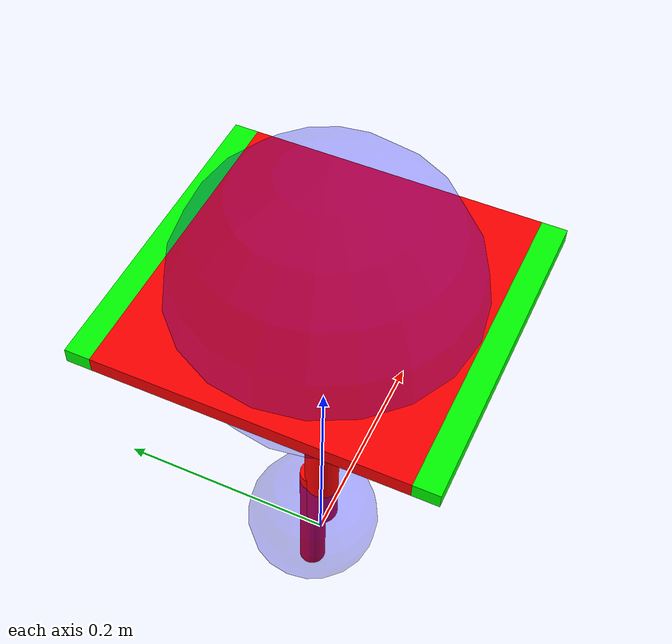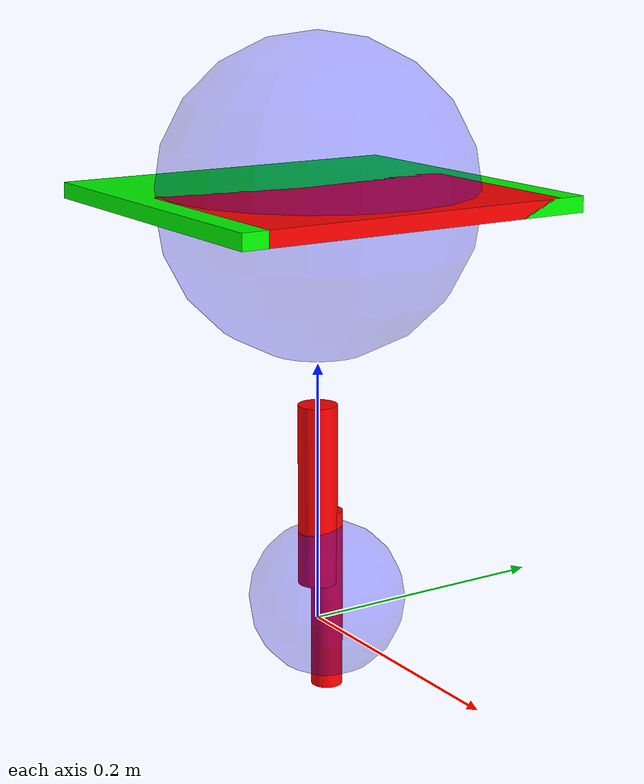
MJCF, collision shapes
<mujoco model="swivel_chair_0700">
  <custom>
    <numeric data="-0.225755 0.221819 0.007144 1.0 0.00064 -0.0 -0.0" name="1_chair_base_initpos" />
    <numeric data="0.090067 0.21979 0.01494 0.118367 -0.701227 0.090995 -0.697129" name="2_chair_column_initpos" />
    <numeric data="0.082576 -0.170539 0.009289 0.421821 0.906551 0.013823 0.006432" name="3_chair_seat_initpos" />
  </custom>
  <asset>
    <mesh file="swivel_chair_0700/base.stl" name="1_chair_base" scale="0.0006 0.0006 0.0006" />
    <mesh file="swivel_chair_0700/column.stl" name="2_chair_column" scale="0.0006 0.0006 0.0006" />
    <mesh file="swivel_chair_0700/seat.stl" name="3_chair_seat" scale="0.0006 0.0006 0.0006" />
    <texture file="../textures/light-wood.png" name="tex-light-wood" type="2d" />
    <material name="light-wood" reflectance="0.5" texrepeat="20 20" texture="tex-light-wood" texuniform="true" />
  </asset>
  <worldbody><body name="combined_body" pos="0 0 0.015" quat="1 0 0 0"><geom conaffinity="0" contype="0" density="0" material="light-wood" mesh="1_chair_base" name="1_chair_base_geom" pos="0.0 0.008 0.0" rgba="0.82 0.71 0.55 1" solref="0.001 1" type="mesh" quat="1 0 0 0" />
      <geom density="100" name="noviz_collision_1_chair_base_1" pos="0.0 0.008 0.0" rgba="1 0 0 1" size="0.012 0.07" solref="0.001 1" type="cylinder" quat="1 0 0 0" />
      <geom density="100" name="noviz_collision_1_chair_base_2" pos="0.0 0.008 0.0" rgba="1 0 0 1" size="0.012 0.07" solref="0.001 1" type="cylinder" quat="1 0 0 0" />
      <geom density="100" name="noviz_collision_1_chair_base_3" pos="0.0 0.008 0.0" rgba="1 0 0 1" size="0.012 0.07" solref="0.001 1" type="cylinder" quat="1 0 0 0" />
      <geom density="100" name="noviz_collision_1_chair_base_4" pos="0.0 0.008 0.0" rgba="1 0 0 1" size="0.012 0.07" solref="0.001 1" type="cylinder" quat="1 0 0 0" />
      <geom density="100" name="noviz_collision_1_chair_base_5" pos="0.0 0.008 0.0" rgba="1 0 0 1" size="0.012 0.07" solref="0.001 1" type="cylinder" quat="1 0 0 0" />
      <site name="base-column,conn_site1" pos="0.0 0.008 0.0" quat="1 0 0 0" rgba="0.9019 0.0980 0.2941 0.3" size="0.012" />
      <site name="1_chair_base_corner_site1" pos="0.0 0.008 0.0" rgba="0 0 1 0.3" size="0.012" quat="1 0 0 0" />
      <site name="1_chair_base_corner_site2" pos="0.0 0.008 0.0" rgba="0 0 1 0.3" size="0.012" quat="1 0 0 0" />
      <site name="1_chair_base_corner_site3" pos="0.0 0.008 0.0" rgba="0 0 1 0.3" size="0.012" quat="1 0 0 0" />
      <site name="1_chair_base_corner_site4" pos="0.0 0.008 0.0" rgba="0 0 1 0.3" size="0.012" quat="1 0 0 0" />
      <site name="1_chair_base_corner_site5" pos="0.0 0.008 0.0" rgba="0 0 1 0.3" size="0.012" quat="1 0 0 0" />
      <site name="1_chair_base_bottom_site" pos="0.0 0.008 0.0" rgba="0 0 1 0.3" size="0.00684" quat="1 0 0 0" />
      <site name="1_chair_base_top_site" pos="0.0 0.008 0.0" rgba="0 0 1 0.3" size="0.00684" quat="1 0 0 0" />
      <site name="1_chair_base_horizontal_radius_site" pos="0.0 0.008 0.0" rgba="0 0 1 0.3" size="0.06" quat="1 0 0 0" />
    <geom conaffinity="0" contype="0" density="0" material="light-wood" mesh="2_chair_column" name="2_chair_column_geom" pos="0.0 0.0 0.084" rgba="0.82 0.71 0.55 1" solref="0.001 1" type="mesh" quat="1 0 0 0" />
      <geom density="100" name="noviz_collision_2_chair_column" pos="0.0 0.0 0.084" rgba="1 0 0 1" size="0.015 0.07" solref="0.001 1" type="cylinder" quat="1 0 0 0" />
      <site name="column-base,conn_site1" pos="0.0 0.0 0.084" quat="1 0 0 0" rgba="0.9019 0.0980 0.2941 0.3" size="0.012" />
      <site name="column-seat,conn_site2" pos="0.0 0.0 0.084" quat="1 0 0 0" rgba="0.2352 0.7058 0.2941 0.3" size="0.012" />
      <site name="2_chair_column_corner_site1" pos="0.0 0.0 0.084" rgba="0 0 1 0.3" size="0.00684" quat="1 0 0 0" />
      <site name="2_chair_column_corner_site2" pos="0.0 0.0 0.084" rgba="0 0 1 0.3" size="0.00684" quat="1 0 0 0" />
      <site name="2_chair_column_bottom_site" pos="0.0 0.0 0.084" rgba="0 0 1 0.3" size="0.00684" quat="1 0 0 0" />
      <site name="2_chair_column_top_site" pos="0.0 0.0 0.084" rgba="0 0 1 0.3" size="0.00684" quat="1 0 0 0" />
      <site name="2_chair_column_horizontal_radius_site" pos="0.0 0.0 0.084" rgba="0 0 1 0.3" size="0.012" quat="1 0 0 0" />
    <geom conaffinity="0" contype="0" density="0" material="light-wood" mesh="3_chair_seat" name="3_chair_seat_geom" pos="0.0 0.0 0.31" rgba="0.82 0.71 0.55 1" solref="0.001 1" type="mesh" quat="1 0 0 0" />
      <geom density="300" name="noviz_collision_3_chair_seat_1" pos="0.0 0.0 0.31" rgba="1 0 0 1" size="0.13 0.12 0.006" solref="0.001 1" type="box" quat="1 0 0 0" />
      <geom density="300" name="noviz_collision_3_chair_seat_2" pos="0.0 0.0 0.31" rgba="0 1 0 1" size="0.13 0.14 0.006" solref="0.001 1" type="box" quat="1 0 0 0" />
      <site name="seat-column,conn_site2" pos="0.0 0.0 0.31" quat="1 0 0 0" rgba="0.2352 0.7058 0.2941 0.3" size="0.012" />
      <site name="3_chair_seat_corner_site1" pos="0.0 0.0 0.31" rgba="0 0 1 0.3" size="0.00684" quat="1 0 0 0" />
      <site name="3_chair_seat_corner_site2" pos="0.0 0.0 0.31" rgba="0 0 1 0.3" size="0.00684" quat="1 0 0 0" />
      <site name="3_chair_seat_corner_site3" pos="0.0 0.0 0.31" rgba="0 0 1 0.3" size="0.00684" quat="1 0 0 0" />
      <site name="3_chair_seat_corner_site4" pos="0.0 0.0 0.31" rgba="0 0 1 0.3" size="0.00684" quat="1 0 0 0" />
      <site name="3_chair_seat_corner_site5" pos="0.0 0.0 0.31" rgba="0 0 1 0.3" size="0.00684" quat="1 0 0 0" />
      <site name="3_chair_seat_corner_site6" pos="0.0 0.0 0.31" rgba="0 0 1 0.3" size="0.00684" quat="1 0 0 0" />
      <site name="3_chair_seat_corner_site7" pos="0.0 0.0 0.31" rgba="0 0 1 0.3" size="0.00684" quat="1 0 0 0" />
      <site name="3_chair_seat_bottom_site" pos="0.0 0.0 0.31" rgba="0 0 1 0.3" size="0.00684" quat="1 0 0 0" />
      <site name="3_chair_seat_top_site" pos="0.0 0.0 0.31" rgba="0 0 1 0.3" size="0.00684" quat="1 0 0 0" />
      <site name="3_chair_seat_horizontal_radius_site" pos="0.0 0.0 0.31" rgba="0 0 1 0.3" size="0.12" quat="1 0 0 0" />
    </body></worldbody><actuator />
  <sensor />
  <contact />
  <default />
</mujoco>
